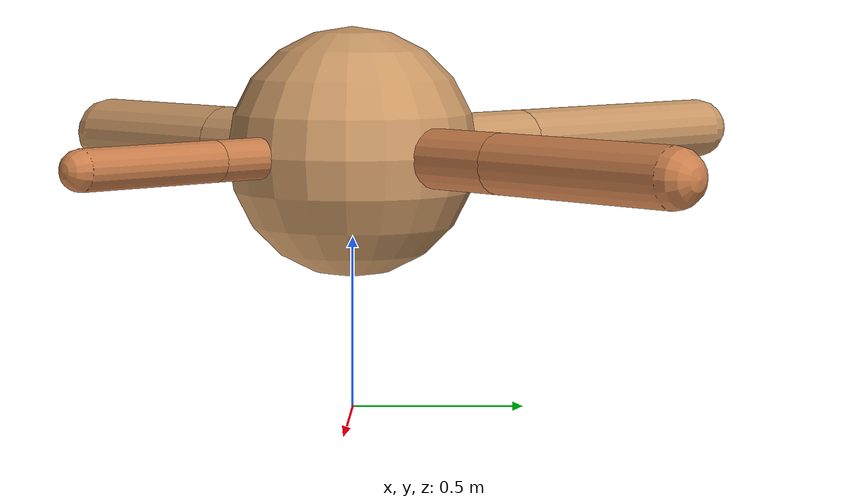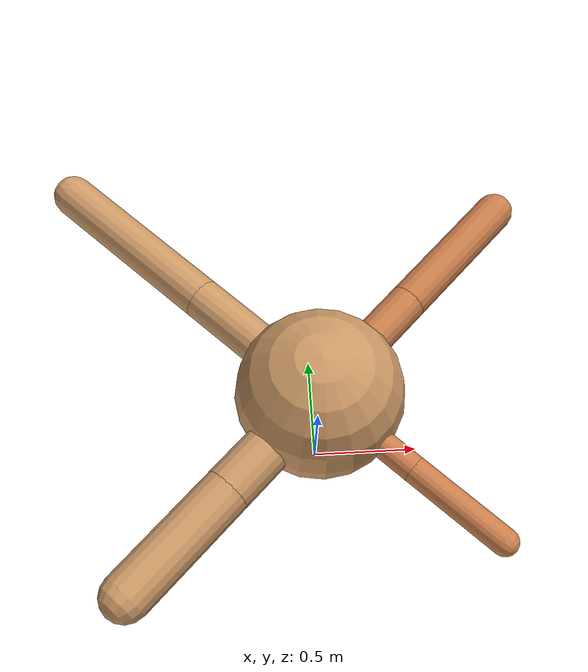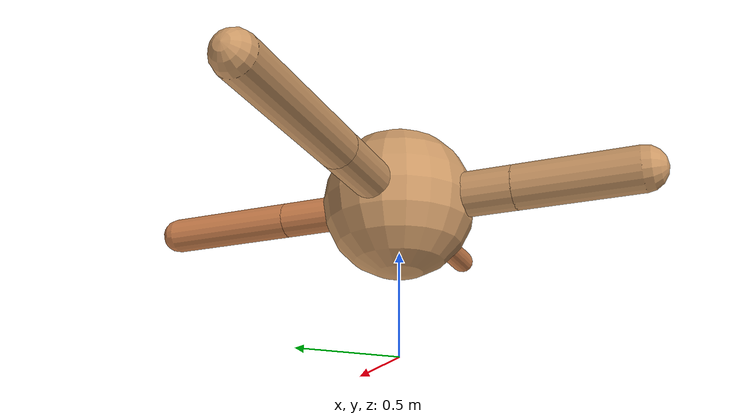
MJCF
<?xml version="1.0" ?>
<mujoco model="ant">

	<compiler angle="degree" coordinate="local" inertiafromgeom="true"/>

	<option integrator="RK4" timestep="0.01"/>

	<custom>

		<numeric data="0.0 0.0 0.55 1.0 0.0 0.0 0.0 0.0 1.0 0.0 -1.0 0.0 -1.0 0.0 1.0" name="init_qpos"/>

	</custom>

	<default>

		<joint armature="1" damping="1" limited="true"/>

		<geom conaffinity="0" condim="3" density="5.0" friction="1.5 0.1 0.1" margin="0.01" rgba="0.8 0.6 0.4 1"/>

	</default>

	<worldbody>

		<body name="torso" pos="0 0 0.75">

			<geom name="torso_geom" pos="0 0 0" size="0.3660529937598555" type="sphere"/>

			<!--joint armature="0" damping="0" limited="false" margin="0.01" name="root" pos="0 0 0" type="free"/-->

			<body name="front_left_leg" pos="0 0 0">

				<geom fromto="0 0 0 0.2 0.2 0" name="aux_1_geom" size="0.08599662155607081" type="capsule" rgba=".8 .5 .3 1"/>

				<body name="aux_1" pos="0.2 0.2 0">

					<joint axis="0 0 1" name="hip_1" pos="0.0 0.0 0.0" range="-40 40" type="hinge"/>

					<geom fromto="0 0 0 0.22620844055616718 0.22620844055616718 0" name="left_leg_geom" size="0.08599662155607081" type="capsule" rgba=".8 .5 .3 1"/>

					<body pos="0.22620844055616718 0.22620844055616718 0" name="front_left_foot">

						<joint axis="-1 1 0" name="ankle_1" pos="0.0 0.0 0.0" range="30 100" type="hinge"/>

						<geom fromto="0 0 0 0.45241688111233436 0.45241688111233436 0" name="left_ankle_geom" size="0.08599662155607081" type="capsule" rgba=".8 .5 .3 1"/>

					</body>

				</body>

			</body>

			<body name="front_right_leg" pos="0 0 0">

				<geom fromto="0 0 0 -0.2 0.2 0" name="aux_2_geom" size="0.09461680402275263" type="capsule"/>

				<body name="aux_2" pos="-0.2 0.2 0">

					<joint axis="0 0 1" name="hip_2" pos="0.0 0.0 0.0" range="-40 40" type="hinge"/>

					<geom fromto="0 0 0 -0.2944080198032113 0.2944080198032113 0" name="right_leg_geom" size="0.09461680402275263" type="capsule"/>

					<body pos="-0.2944080198032113 0.2944080198032113 0" name="front_right_foot">

						<joint axis="1 1 0" name="ankle_2" pos="0.0 0.0 0.0" range="-100 -30" type="hinge"/>

						<geom fromto="0 0 0 -0.5888160396064226 0.5888160396064226 0" name="right_ankle_geom" size="0.09461680402275263" type="capsule"/>

					</body>

				</body>

			</body>

			<body name="left_back_leg" pos="0 0 0">

				<geom fromto="0 0 0 -0.2 -0.2 0" name="aux_3_geom" size="0.1079135670542927" type="capsule"/>

				<body name="aux_3" pos="-0.2 -0.2 0">

					<joint axis="0 0 1" name="hip_3" pos="0.0 0.0 0.0" range="-40 40" type="hinge"/>

					<geom fromto="0 0 0 -0.20754071152664935 -0.20754071152664935 0" name="back_leg_geom" size="0.1079135670542927" type="capsule"/>

					<body pos="-0.20754071152664935 -0.20754071152664935 0" name="left_back_foot">

						<joint axis="-1 1 0" name="ankle_3" pos="0.0 0.0 0.0" range="-100 -30" type="hinge"/>

						<geom fromto="0 0 0 -0.4150814230532987 -0.4150814230532987 0" name="third_ankle_geom" size="0.1079135670542927" type="capsule"/>

					</body>

				</body>

			</body>

			<body name="right_back_leg" pos="0 0 0">

				<geom fromto="0 0 0 0.2 -0.2 0" name="aux_4_geom" size="0.059370248114984946" type="capsule" rgba=".8 .5 .3 1"/>

				<body name="aux_4" pos="0.2 -0.2 0">

					<joint axis="0 0 1" name="hip_4" pos="0.0 0.0 0.0" range="-40 40" type="hinge"/>

					<geom fromto="0 0 0 0.16376567088536734 -0.16376567088536734 0" name="rightback_leg_geom" size="0.059370248114984946" type="capsule" rgba=".8 .5 .3 1"/>

					<body pos="0.16376567088536734 -0.16376567088536734 0" name="right_back_foot">

						<joint axis="1 1 0" name="ankle_4" pos="0.0 0.0 0.0" range="30 100" type="hinge"/>

						<geom fromto="0 0 0 0.3275313417707347 -0.3275313417707347 0" name="fourth_ankle_geom" size="0.059370248114984946" type="capsule" rgba=".8 .5 .3 1"/>

					</body>

				</body>

			</body>

		</body>

	</worldbody>

	<actuator>

		<motor ctrllimited="true" ctrlrange="-1.0 1.0" joint="hip_4" gear="150"/>

		<motor ctrllimited="true" ctrlrange="-1.0 1.0" joint="ankle_4" gear="150"/>

		<motor ctrllimited="true" ctrlrange="-1.0 1.0" joint="hip_1" gear="150"/>

		<motor ctrllimited="true" ctrlrange="-1.0 1.0" joint="ankle_1" gear="150"/>

		<motor ctrllimited="true" ctrlrange="-1.0 1.0" joint="hip_2" gear="150"/>

		<motor ctrllimited="true" ctrlrange="-1.0 1.0" joint="ankle_2" gear="150"/>

		<motor ctrllimited="true" ctrlrange="-1.0 1.0" joint="hip_3" gear="150"/>

		<motor ctrllimited="true" ctrlrange="-1.0 1.0" joint="ankle_3" gear="150"/>

	</actuator>

</mujoco>
